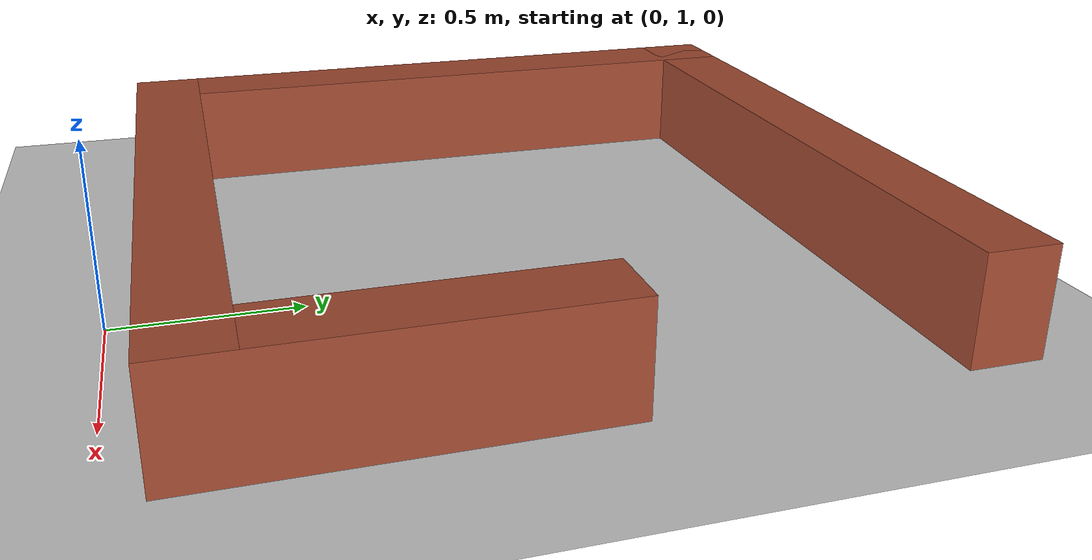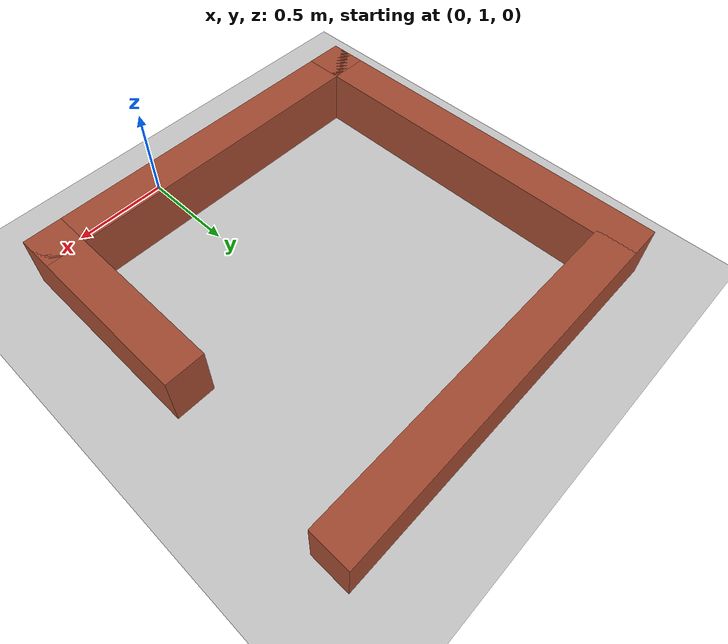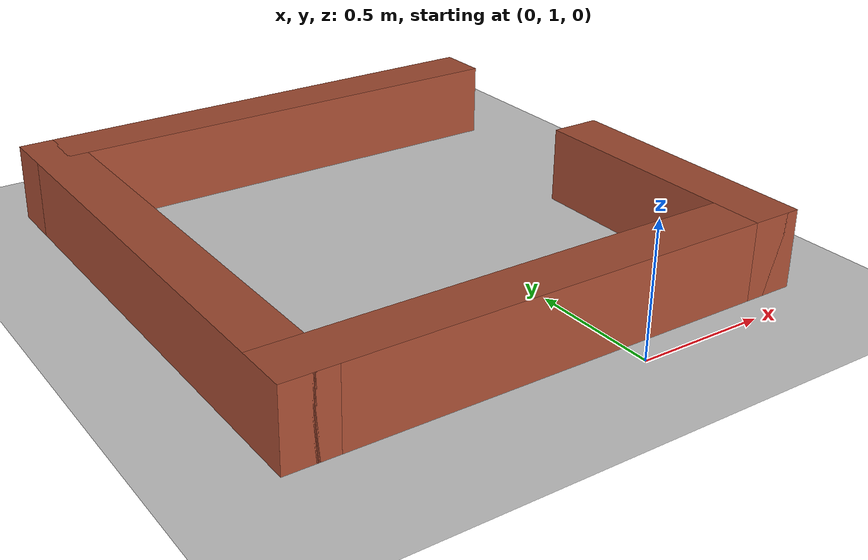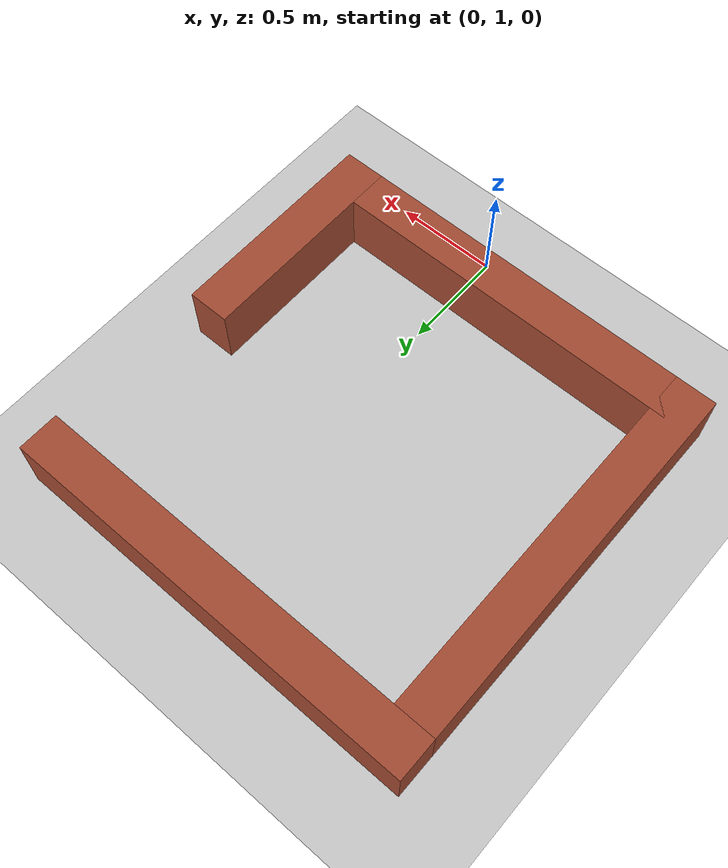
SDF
<sdf version="1.4">
   <world name="default">

     <scene>
       <ambient>0.4 0.4 0.4 1</ambient>
       <background>0.7 0.7 0.7 1</background>
       <shadows>true</shadows>
     </scene>

     <!-- A global light source -->
     <include>
       <uri>model://sun</uri>
     </include>

     <!-- A ground plane -->
     <include>
       <uri>model://ground_plane</uri>
     </include>

     <!-- Maze -->
     <include>
       <uri>model://maze1</uri>
 	     <pose>-0.25 2.125 0 0 0 0</pose>
     </include>

     <physics type="ode">
       <real_time_update_rate>1000.0</real_time_update_rate>
       <max_step_size>0.001</max_step_size>
       <real_time_factor>1</real_time_factor>
       <ode>
         <solver>
           <type>quick</type>
           <iters>150</iters>
           <precon_iters>0</precon_iters>
           <sor>1.400000</sor>
           <use_dynamic_moi_rescaling>1</use_dynamic_moi_rescaling>
         </solver>
         <constraints>
           <cfm>0.00001</cfm>
           <erp>0.2</erp>
           <contact_max_correcting_vel>2000.000000</contact_max_correcting_vel>
           <contact_surface_layer>0.01000</contact_surface_layer>
         </constraints>
       </ode>
     </physics>

   </world>

 </sdf>

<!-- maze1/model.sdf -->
<sdf version='1.6'>
  <model name='maze1'>
    <pose frame=''>0.035 -2.005 0 0 -0 0</pose>
    <link name='Wall_0'>
      <collision name='Wall_0_Collision'>
        <geometry>
          <box>
            <size>2.05 0.2 0.3</size>
          </box>
        </geometry>
        <pose frame=''>0 0 0.15 0 -0 0</pose>
      </collision>
      <visual name='Wall_0_Visual'>
        <pose frame=''>0 0 0.15 0 -0 0</pose>
        <geometry>
          <box>
            <size>2.05 0.2 0.3</size>
          </box>
        </geometry>
        <material>
          <script>
            <uri>file://media/materials/scripts/gazebo.material</uri>
            <name>Gazebo/Bricks</name>
          </script>
          <ambient>1 1 1 1</ambient>
        </material>
        <meta>
          <layer>0</layer>
        </meta>
      </visual>
      <pose frame=''>0 0.925 0 0 -0 3.14159</pose>
    </link>
    <link name='Wall_1'>
      <collision name='Wall_1_Collision'>
        <geometry>
          <box>
            <size>2.05 0.2 0.3</size>
          </box>
        </geometry>
        <pose frame=''>0 0 0.15 0 -0 0</pose>
      </collision>
      <visual name='Wall_1_Visual'>
        <pose frame=''>0 0 0.15 0 -0 0</pose>
        <geometry>
          <box>
            <size>2.05 0.2 0.3</size>
          </box>
        </geometry>
        <material>
          <script>
            <uri>file://media/materials/scripts/gazebo.material</uri>
            <name>Gazebo/Bricks</name>
          </script>
          <ambient>1 1 1 1</ambient>
        </material>
        <meta>
          <layer>0</layer>
        </meta>
      </visual>
      <pose frame=''>-0.925 0 0 0 -0 -1.5708</pose>
    </link>
    <link name='Wall_2'>
      <collision name='Wall_2_Collision'>
        <geometry>
          <box>
            <size>2.05 0.2 0.3</size>
          </box>
        </geometry>
        <pose frame=''>0 0 0.15 0 -0 0</pose>
      </collision>
      <visual name='Wall_2_Visual'>
        <pose frame=''>0 0 0.15 0 -0 0</pose>
        <geometry>
          <box>
            <size>2.05 0.2 0.3</size>
          </box>
        </geometry>
        <material>
          <script>
            <uri>file://media/materials/scripts/gazebo.material</uri>
            <name>Gazebo/Bricks</name>
          </script>
          <ambient>1 1 1 1</ambient>
        </material>
        <meta>
          <layer>0</layer>
        </meta>
      </visual>
      <pose frame=''>0 -0.925 0 0 -0 0</pose>
    </link>
    <link name='Wall_3'>
      <collision name='Wall_3_Collision'>
        <geometry>
          <box>
            <size>1.05 0.2 0.3</size>
          </box>
        </geometry>
        <pose frame=''>0 0 0.15 0 -0 0</pose>
      </collision>
      <visual name='Wall_3_Visual'>
        <pose frame=''>0 0 0.15 0 -0 0</pose>
        <geometry>
          <box>
            <size>1.05 0.2 0.3</size>
          </box>
        </geometry>
        <material>
          <script>
            <uri>file://media/materials/scripts/gazebo.material</uri>
            <name>Gazebo/Bricks</name>
          </script>
          <ambient>1 1 1 1</ambient>
        </material>
        <meta>
          <layer>0</layer>
        </meta>
      </visual>
      <pose frame=''>0.925 -0.5 0 0 -0 1.5708</pose>
    </link>
    <static>1</static>
  </model>
</sdf>
